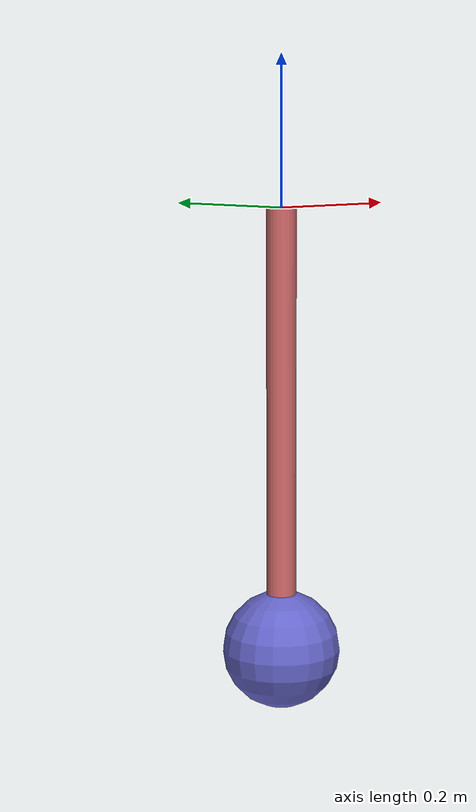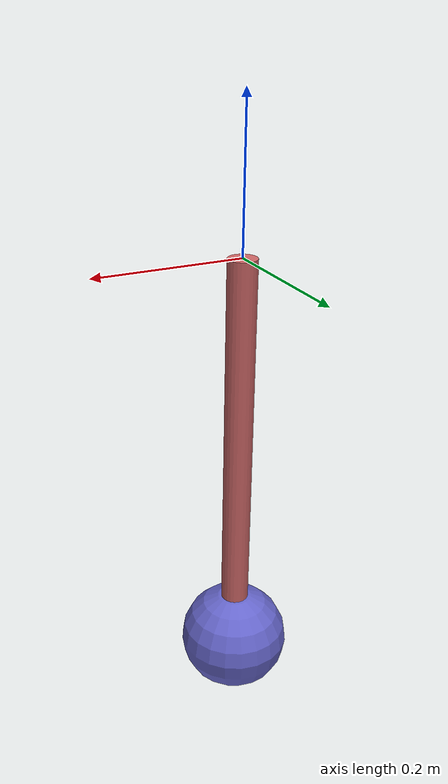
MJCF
<mujoco>
                <option gravity="0 0 -9.81" timestep="0.01"/>
                <default>
                    <joint damping="0.2"/>
                </default>
                <worldbody>
                    <body name="pendulum" pos="0 0 0">
                        <joint name="hinge" type="hinge" axis="1 0 0"/>
                        <geom name="rod" type="cylinder" size="0.02 0.3"
                              pos="0 0 -0.3" rgba="0.8 0.4 0.4 1"/>
                        <geom name="mass" type="sphere" size="0.08"
                              pos="0 0 -0.6" mass="0.8" rgba="0.4 0.4 0.8 1"/>
                    </body>
                </worldbody>
                <actuator>
                    <motor joint="hinge" gear="1"/>
                </actuator>
            </mujoco>
